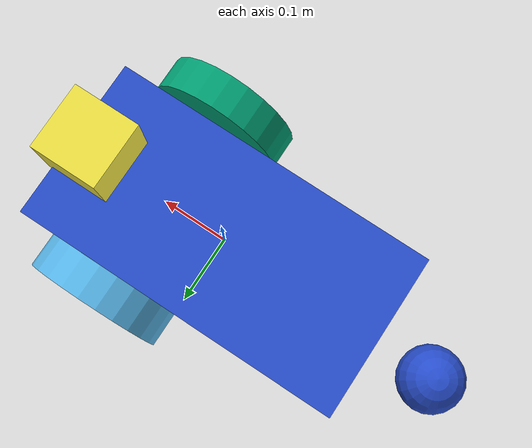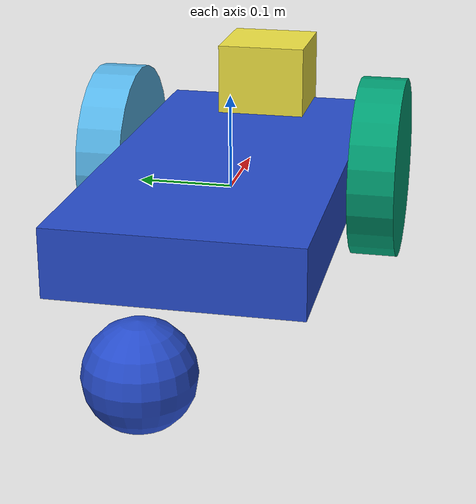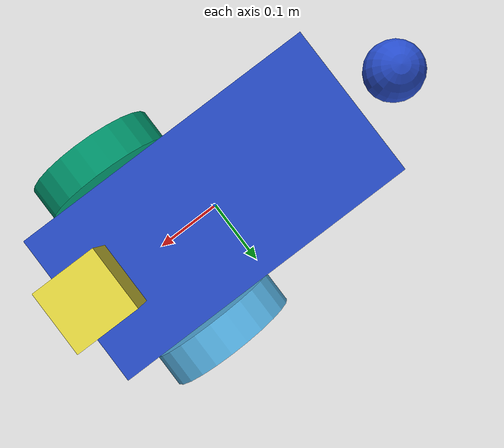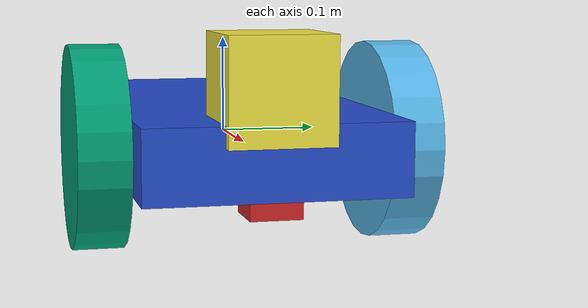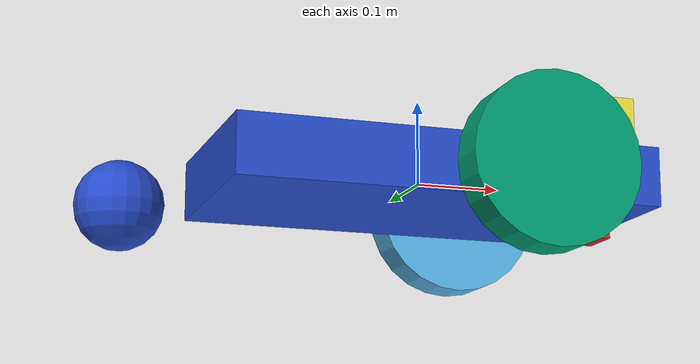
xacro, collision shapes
<?xml version="1.0"?>
<!-- Revolute-Revolute Manipulator -->
<robot name="rrbot" xmlns:xacro="http://www.ros.org/wiki/xacro">

  <!-- Constants for robot dimensions -->
  <xacro:property name="PI" value="3.1415926535897931"/>
  <xacro:property name="mass" value="1" /> <!-- arbitrary value for mass -->
  <xacro:property name="width" value="0.1" /> <!-- Square dimensions (widthxwidth) of beams -->
  <xacro:property name="height1" value="2" /> <!-- Link 1 -->
  <xacro:property name="height2" value="1" /> <!-- Link 2 -->
  <xacro:property name="height3" value="1" /> <!-- Link 3 -->
  <xacro:property name="camera_link" value="0.05" /> <!-- Size of square 'camera' box -->
  <xacro:property name="axel_offset" value="0.05" /> <!-- Space btw top of beam and the each joint -->

  <!-- Import all Gazebo-customization elements, including Gazebo colors -->
  <xacro:include filename="$(find rrbot_description)/urdf/rrbot.gazebo" />
  <!-- Import Rviz colors -->
  <xacro:include filename="$(find rrbot_description)/urdf/materials.xacro" />

  <!-- Used for fixing robot to Gazebo 'base_link' -->

  <!-- Base Link -->
  <link name="link_chassis">
    <!-- pose and inertial -->
    <pose>0 0 0.1 0 0 0</pose>
    <inertial>
      <mass value="5"/>
      <origin rpy="0 0 0" xyz="0 0 0.1"/>
      <inertia ixx="0.0395416666667" ixy="0" ixz="0" iyy="0.106208333333" iyz="0" izz="0.106208333333"/>
    </inertial>
    <!-- body -->
    <collision name="collision_chassis">
      <geometry>
        <box size="0.5 0.25 0.07"/>
      </geometry>
    </collision>
    <visual>
      <origin rpy="0 0 0" xyz="0 0 0"/>
      <geometry>
        <mesh scale ="1 0.6 0.5" filename="package://rrbot_description/meshes/chassis.dae"/>
      </geometry>
      <material name="blue"/>
    </visual>
    <!-- caster front -->
    <collision name="caster_front_collision">
      <origin rpy=" 0 0 0" xyz="-0.35 0 -0.05"/>
      <geometry>
        <sphere radius="0.05"/>
      </geometry>
      <surface>
        <friction>
          <ode>
            <mu>0</mu>
            <mu2>0</mu2>
            <slip1>1.0</slip1>
            <slip2>1.0</slip2>
          </ode>
        </friction>
      </surface>
    </collision>
    <visual name="caster_front_visual">
      <origin rpy=" 0 0 0" xyz="-0.14 0 -0.05"/>
      <geometry>
        <sphere radius="0.05"/>
      </geometry>
    </visual>
  </link>
  <!-- Middle Link -->
  <link name="left_wheel">
    <!--origin xyz="0.1 0.13 0.1" rpy="0 1.5707 1.5707"/-->
    <collision name="collision">
      <origin xyz="0 0 0" rpy="0 1.5707 1.5707"/>
      <geometry>
        <cylinder radius="0.1" length="0.05"/>
      </geometry>
    </collision>
    <visual name="left_wheel_visual">
      <origin xyz="0 0 0" rpy="0 1.5707 1.5707"/>
      <geometry>
        <cylinder radius="0.1" length="0.05"/>
      </geometry>
    </visual>
    <inertial>
      <origin xyz="0 0 0" rpy="0 1.5707 1.5707"/>
      <mass value="5"/>
      <cylinder_inertia m="5" r="0.1" h="0.05"/>
      <inertia
        ixx="1.0" ixy="0.0" ixz="0.0"
        iyy="1.0" iyz="0.0"
        izz="1.0"/>
    </inertial>
  </link>

  <link name="right_wheel">
    <!--origin xyz="0.1 -0.13 0.1" rpy="0 1.5707 1.5707"/-->
    <collision name="collision">
      <origin xyz="0 0 0" rpy="0 1.5707 1.5707"/>
      <geometry>
        <cylinder radius="0.1" length="0.05"/>
      </geometry>
    </collision>
    <visual name="right_wheel_visual">
      <origin xyz="0 0 0" rpy="0 1.5707 1.5707"/>
      <geometry>
        <cylinder radius="0.1" length="0.05"/>
      </geometry>
    </visual>
    <inertial>
      <origin xyz="0 0 0" rpy="0 1.5707 1.5707"/>
      <mass value="5"/>
      <cylinder_inertia m="5" r="0.1" h="0.05"/>
      <inertia
        ixx="1.0" ixy="0.0" ixz="0.0"
        iyy="1.0" iyz="0.0"
        izz="1.0"/>
    </inertial>
  </link>

  <joint type="continuous" name="left_wheel_hinge">
    <origin xyz="0.1 0.15 0" rpy="0 0 0"/>
    <child link="left_wheel"/>
    <parent link="link_chassis"/>
    <axis xyz="0 1 0" rpy="0 0 0"/>
    <limit effort="100" velocity="100"/>
    <joint_properties damping="0.0" friction="0.0"/>
  </joint>

  <joint type="continuous" name="right_wheel_hinge">
    <origin xyz="0.1 -0.15 0" rpy="0 0 0"/>
    <child link="right_wheel"/>
    <parent link="link_chassis"/>
    <axis xyz="0 1 0" rpy="0 0 0"/>
    <limit effort="100" velocity="100"/>
    <joint_properties damping="0.0" friction="0.0"/>
  </joint>

  <joint name="hokuyo_joint" type="fixed">
    <axis xyz="0 1 0" />
    <origin xyz="0.21 0 0.065" rpy="0 0 0"/>
    <parent link="link_chassis"/>
    <child link="hokuyo_link"/>
  </joint>

  <!-- Hokuyo Laser -->
  <link name="hokuyo_link">
    <collision>
      <origin xyz="0 0 0" rpy="0 0 0"/>
      <geometry>
	<box size="0.1 0.1 0.1"/>
      </geometry>
    </collision>

    <visual>
      <origin xyz="0 0 0" rpy="0 0 0"/>
      <geometry>
        <mesh filename="package://rrbot_description/meshes/hokuyo.dae"/>
      </geometry>
    </visual>

    <inertial>
      <mass value="1e-5" />
      <origin xyz="0 0 0" rpy="0 0 0"/>
      <inertia ixx="1e-6" ixy="0" ixz="0" iyy="1e-6" iyz="0" izz="1e-6" />
    </inertial>
  </link>

  <joint name="camera_joint" type="fixed">
    <axis xyz="0 1 0" />
    <origin xyz="0.21 0 -0.029" rpy="0 0 0"/>
    <parent link="link_chassis"/>
    <child link="camera_link"/>
  </joint>

  <!-- Camera -->
  <link name="camera_link">
    <collision>
      <origin xyz="0 0 0" rpy="0 0 0"/>
      <geometry>
	<box size="${camera_link} ${camera_link} ${camera_link}"/>
      </geometry>
    </collision>

    <visual>
      <origin xyz="0 0 0" rpy="0 0 0"/>
      <geometry>
	<box size="${camera_link} ${camera_link} ${camera_link}"/>
      </geometry>
      <material name="red"/>
    </visual>

    <inertial>
      <mass value="1e-5" />
      <origin xyz="0 0 0" rpy="0 0 0"/>
      <inertia ixx="1e-6" ixy="0" ixz="0" iyy="1e-6" iyz="0" izz="1e-6" />
    </inertial>
  </link>

  <!-- generate an optical frame http://www.ros.org/reps/rep-0103.html#suffix-frames
      so that ros and opencv can operate on the camera frame correctly -->
  <joint name="camera_optical_joint" type="fixed">
    <!-- these values have to be these values otherwise the gazebo camera image
        won't be aligned properly with the frame it is supposedly originating from -->
    <origin xyz="0 0 0" rpy="${-pi/2} 0 ${-pi/2}"/>
    <parent link="camera_link"/>
    <child link="camera_link_optical"/>
  </joint>

  <link name="camera_link_optical">
  </link>

  <transmission name="tran1">
    <type>transmission_interface/SimpleTransmission</type>
    <joint name="left_wheel_hinge">
      <hardwareInterface>hardware_interface/EffortJointInterface</hardwareInterface>
    </joint>
    <actuator name="motor1">
      <hardwareInterface>hardware_interface/EffortJointInterface</hardwareInterface>
      <mechanicalReduction>1</mechanicalReduction>
    </actuator>
  </transmission>

  <transmission name="tran2">
    <type>transmission_interface/SimpleTransmission</type>
    <joint name="right_wheel_hinge">
      <hardwareInterface>hardware_interface/EffortJointInterface</hardwareInterface>
    </joint>
    <actuator name="motor2">
      <hardwareInterface>hardware_interface/EffortJointInterface</hardwareInterface>
      <mechanicalReduction>1</mechanicalReduction>
    </actuator>
  </transmission>

</robot>
